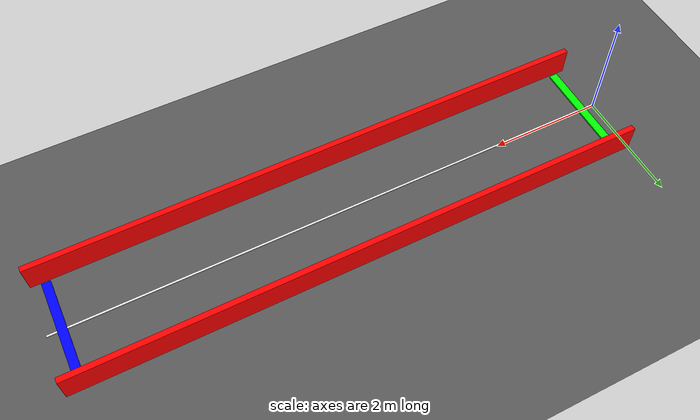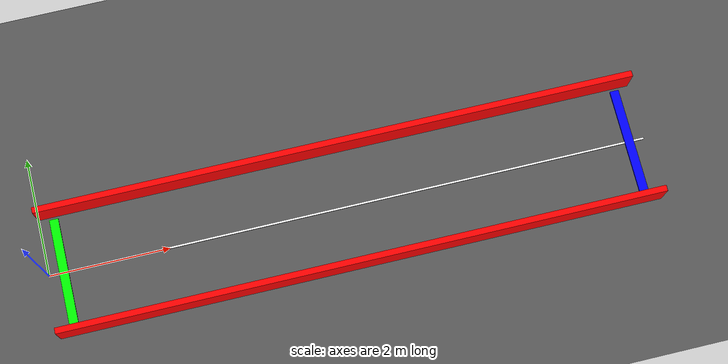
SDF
<?xml version="1.0" ?>
<sdf version="1.8">
  <world name="empty_track_world">

    <gravity>0 0 -9.81</gravity>

    <!-- Manual ground plane -->
    <model name="ground_plane">
      <static>true</static>
      <link name="link">
        <collision name="collision">
          <geometry>
            <plane>
              <normal>0 0 1</normal>
              <size>100 100</size>
            </plane>
          </geometry>
        </collision>

        <visual name="visual">
          <geometry>
            <plane>
              <normal>0 0 1</normal>
              <size>100 100</size>
            </plane>
          </geometry>
          <material>
            <ambient>0.35 0.35 0.35 1</ambient>
            <diffuse>0.35 0.35 0.35 1</diffuse>
          </material>
        </visual>
      </link>
    </model>

    <!-- Left wall -->
    <model name="left_wall">
      <static>true</static>
      <link name="link">
        <pose>5 1.0 0.25 0 0 0</pose>

        <collision name="collision">
          <geometry>
            <box>
              <size>10 0.1 0.5</size>
            </box>
          </geometry>
        </collision>

        <visual name="visual">
          <geometry>
            <box>
              <size>10 0.1 0.5</size>
            </box>
          </geometry>
          <material>
            <ambient>1 0 0 1</ambient>
            <diffuse>1 0 0 1</diffuse>
          </material>
        </visual>
      </link>
    </model>

    <!-- Right wall -->
    <model name="right_wall">
      <static>true</static>
      <link name="link">
        <pose>5 -1.0 0.25 0 0 0</pose>

        <collision name="collision">
          <geometry>
            <box>
              <size>10 0.1 0.5</size>
            </box>
          </geometry>
        </collision>

        <visual name="visual">
          <geometry>
            <box>
              <size>10 0.1 0.5</size>
            </box>
          </geometry>
          <material>
            <ambient>1 0 0 1</ambient>
            <diffuse>1 0 0 1</diffuse>
          </material>
        </visual>
      </link>
    </model>

    <!-- Center lane line -->
    <model name="center_line">
      <static>true</static>
      <link name="link">
        <pose>5 0 0.03 0 0 0</pose>

        <visual name="visual">
          <geometry>
            <box>
              <size>10 0.03 0.02</size>
            </box>
          </geometry>
          <material>
            <ambient>1 1 1 1</ambient>
            <diffuse>1 1 1 1</diffuse>
          </material>
        </visual>
      </link>
    </model>

    <!-- Start marker -->
    <model name="start_marker">
      <static>true</static>
      <link name="link">
        <pose>0.25 0 0.04 0 0 0</pose>

        <visual name="visual">
          <geometry>
            <box>
              <size>0.15 1.8 0.03</size>
            </box>
          </geometry>
          <material>
            <ambient>0 1 0 1</ambient>
            <diffuse>0 1 0 1</diffuse>
          </material>
        </visual>
      </link>
    </model>

    <!-- End marker -->
    <model name="end_marker">
      <static>true</static>
      <link name="link">
        <pose>9.75 0 0.04 0 0 0</pose>

        <visual name="visual">
          <geometry>
            <box>
              <size>0.15 1.8 0.03</size>
            </box>
          </geometry>
          <material>
            <ambient>0 0 1 1</ambient>
            <diffuse>0 0 1 1</diffuse>
          </material>
        </visual>
      </link>
    </model>

  </world>
</sdf>
